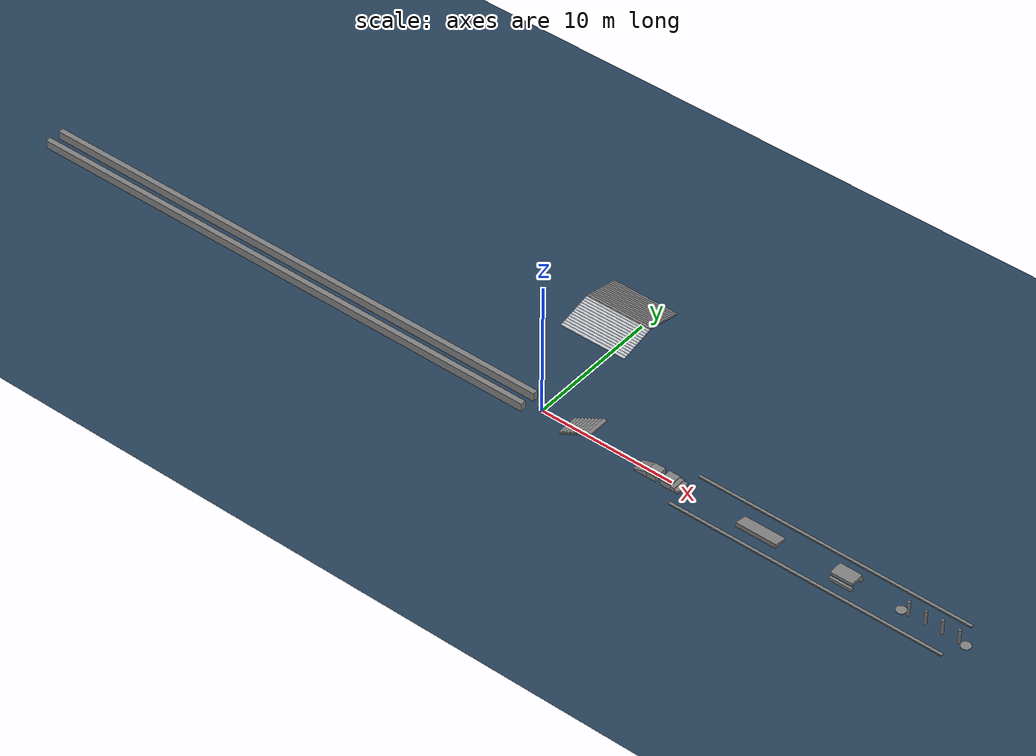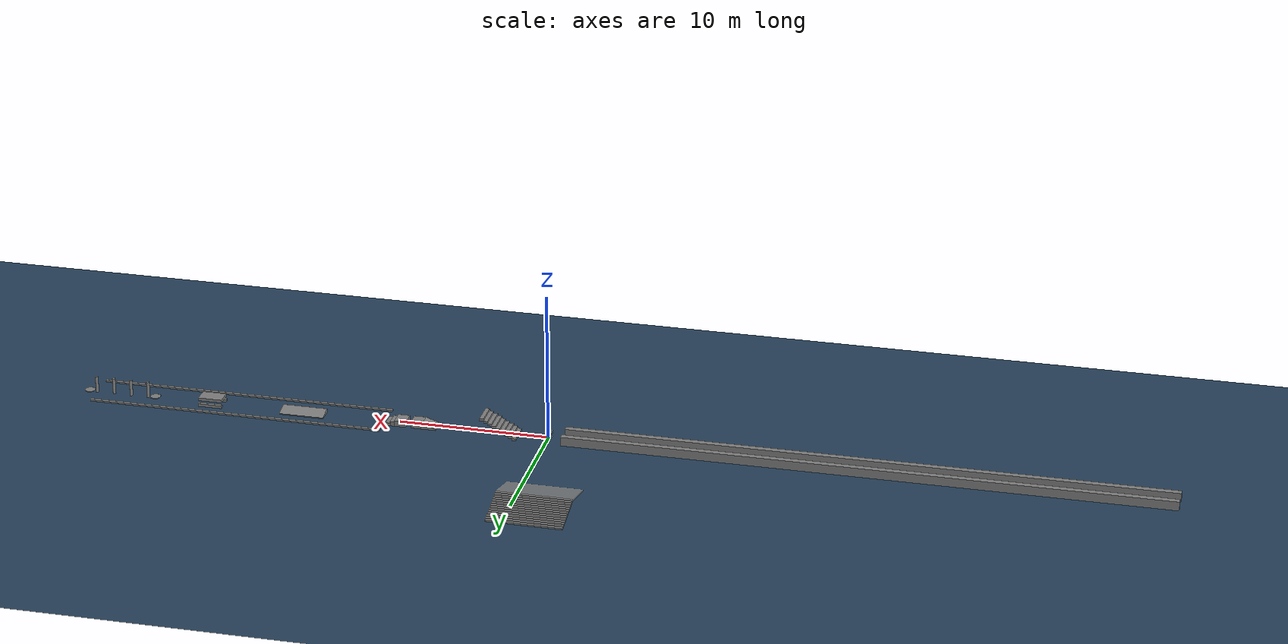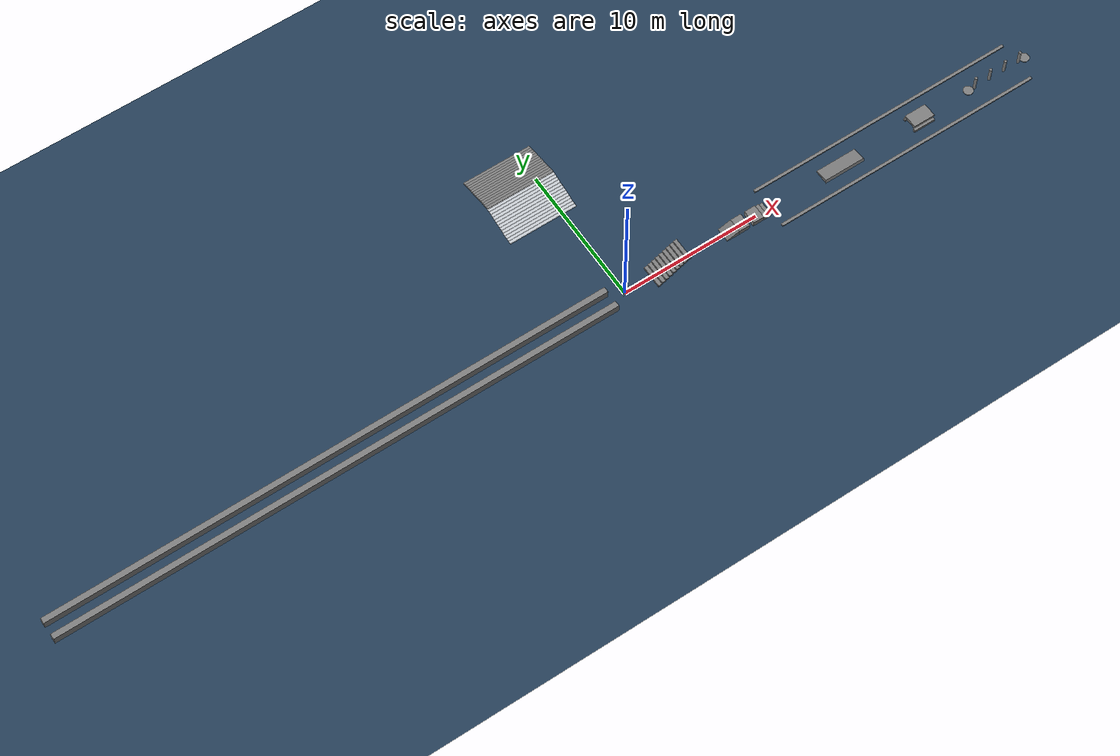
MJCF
<mujoco model="TOE_dog4.5 scene">
  <include file="dog.xml"/>

  <statistic center="0 0 0.1" extent="0.8"/>

  <visual>
    <headlight diffuse="0.6 0.6 0.6" ambient="0.3 0.3 0.3" specular="0 0 0"/>
    <rgba haze="0.15 0.25 0.35 1"/>
    <global azimuth="-130" elevation="-20"/>
  </visual>

  <asset>
    <texture type="skybox" builtin="gradient" rgb1="0.3 0.5 0.7" rgb2="0 0 0" width="512" height="3072"/>
    <texture type="2d" name="groundplane" builtin="checker" mark="edge" rgb1="0.2 0.3 0.4" rgb2="0.1 0.2 0.3"
      markrgb="0.8 0.8 0.8" width="300" height="300"/>
    <material name="groundplane" texture="groundplane" texuniform="true" texrepeat="5 5" reflectance="0.2"/>

  </asset>

  <worldbody>
    <light pos="0 0 1.5" dir="0 0 -1" directional="true"/>
    <geom name="floor" size="0 0 0.05" type="plane" material="groundplane" friction="1 0.1 0.01"/>
    <!-- 场地 -->
    <geom pos="-21 0.6 0.04" type="box"  size="20 0.2 0.5" quat="1.0 0 0 0"/>
    <geom pos="-21 -0.6 0.04" type="box"  size="20 0.2 0.5" quat="1.0 0 0 0"/>
    <geom pos="21 1.5 0.04" type="box"  size="10 0.1 0.05" quat="1.0 0 0 0"/>
    <geom pos="21 -1.5 0.04" type="box"  size="10 0.1 0.05" quat="1.0 0 0 0"/>
    <!-- 竖杆 -->
    <geom pos="27 0 0.02" type="cylinder"  size="0.35 0.02" quat="1.0 0 0 0"/>
    <geom pos="27.5 0 0.02" type="cylinder"  size="0.1 1." quat="1.0 0 0 0"/>
    <geom pos="28.7 0 0.02" type="cylinder"  size="0.1 1." quat="1.0 0 0 0"/>
    <geom pos="29.9 0 0.02" type="cylinder"  size="0.1 1." quat="1.0 0 0 0"/>
    <geom pos="31.1 0 0.02" type="cylinder"  size="0.1 1." quat="1.0 0 0 0"/>
    <geom pos="31.6 0 0.02" type="cylinder"  size="0.35 0.02" quat="1.0 0 0 0"/>
    <!-- 匍匐架 -->
    <geom pos="23 0.5 0.02" type="box"  size="0.8 0.1 0.1" quat="1.0 0 0 0"/>
    <geom pos="23 0 0.4" type="box"  size="0.8 0.5 0.1" quat="1.0 0 0 0"/>
    <geom pos="23 -0.5 0.02" type="box"  size="0.8 0.1 0.1" quat="1.0 0 0 0"/>
    <!-- 高墙 -->
    <!-- 断桥 -->
    <geom pos="8. 0 -0.025" type="box"  size="0.5 0.5 0.2" quat="0.9848 0 -0.1604 0"  friction="1 0.1 0.01"/>
    <geom pos="8.8 0 0.02" type="box"  size="0.4 0.5 0.3" quat="1.0 0 0 0"  friction="1 0.1 0.01"/>
    <geom pos="9.9 0 0.02" type="box"  size="0.4 0.5 0.3" quat="1.0 0 0 0"  friction="1 0.1 0.01"/>
    <geom pos="10.45 0 0.02" type="box"  size="0.15 0.5 0.2" quat="1.0 0 0 0"  friction="1 0.1 0.01"/>
    <geom pos="10.75 0 0.02" type="box"  size="0.15 0.5 0.1" quat="1.0 0 0 0"  friction="1 0.1 0.01"/>
    <!-- 斜坡 -->
    <geom pos="16.7 0.01 -0.07" type="box"  size="1.5 0.5 0.17" quat="0.9945 -0.1045 0 0"/>

    <geom pos="-1.5 7 0.05" type="box" size="0.1 2.5 0.05" quat="0.707 0 0 0.707" rgba="1 1 1 0.8" />
    <geom pos="-1.5 7.2 0.1" type="box" size="0.1 2.5 0.05" quat="0.707 0 0 0.707" rgba="1 1 1 0.8"/>
    <geom pos="-1.5 7.4 0.15" type="box" size="0.1 2.5 0.05" quat="0.707 0 0 0.707" rgba="1 1 1 0.8"/>
    <geom pos="-1.5 7.6 0.2" type="box" size="0.1 2.5 0.05" quat="0.707 0 0 0.707" rgba="1 1 1 0.8"/>
    <geom pos="-1.5 7.8 0.25" type="box" size="0.1 2.5 0.05" quat="0.707 0 0 0.707" rgba="1 1 1 0.8"/>
    <geom pos="-1.5 8.0 0.3" type="box" size="0.1 2.5 0.05" quat="0.707 0 0 0.707" rgba="1 1 1 0.8"/>
    <geom pos="-1.5 8.2 0.35" type="box" size="0.1 2.5 0.05" quat="0.707 0 0 0.707" rgba="1 1 1 0.8"/>
    <geom pos="-1.5 8.4 0.4" type="box" size="0.1 2.5 0.05" quat="0.707 0 0 0.707" rgba="1 1 1 0.8"/>
    <geom pos="-1.5 8.6 0.45" type="box" size="0.1 2.5 0.05" quat="0.707 0 0 0.707" rgba="1 1 1 0.8"/>
    <geom pos="-1.5 8.8 0.5" type="box" size="0.1 2.5 0.05" quat="0.707 0 0 0.707" rgba="1 1 1 0.8"/>
    <geom pos="-1.5 9.0 0.55" type="box" size="0.1 2.5 0.05" quat="0.707 0 0 0.707" rgba="1 1 1 0.8"/>
    <geom pos="-1.5 9.2 0.6" type="box" size="0.1 2.5 0.05" quat="0.707 0 0 0.707" rgba="1 1 1 0.8"/>
    <geom pos="-1.5 9.4 0.65" type="box" size="0.1 2.5 0.05" quat="0.707 0 0 0.707" rgba="1 1 1 0.8"/>
    <geom pos="-1.5 9.6 0.7" type="box" size="0.1 2.5 0.05" quat="0.707 0 0 0.707" rgba="1 1 1 0.8"/>

    <geom pos="-1.5 9.6 0.7" type="box" size="0.1 2.5 0.05" quat="0.707 0 0 0.707" />
    <geom pos="-1.5 9.8 0.65" type="box" size="0.1 2.5 0.05" quat="0.707 0 0 0.707" />
    <geom pos="-1.5 10.0 0.6" type="box" size="0.1 2.5 0.05" quat="0.707 0 0 0.707" />
    <geom pos="-1.5 10.2 0.55" type="box" size="0.1 2.5 0.05" quat="0.707 0 0 0.707" />
    <geom pos="-1.5 10.4 0.5" type="box" size="0.1 2.5 0.05" quat="0.707 0 0 0.707" />
    <geom pos="-1.5 10.6 0.45" type="box" size="0.1 2.5 0.05" quat="0.707 0 0 0.707" />
    <geom pos="-1.5 10.8 0.4" type="box" size="0.1 2.5 0.05" quat="0.707 0 0 0.707" />
    <geom pos="-1.5 11.0 0.35" type="box" size="0.1 2.5 0.05" quat="0.707 0 0 0.707" />
    <geom pos="-1.5 11.2 0.3" type="box" size="0.1 2.5 0.05" quat="0.707 0 0 0.707" />
    <geom pos="-1.5 11.4 0.25" type="box" size="0.1 2.5 0.05" quat="0.707 0 0 0.707" />
    <geom pos="-1.5 11.6 0.2" type="box" size="0.1 2.5 0.05" quat="0.707 0 0 0.707" />
    <geom pos="-1.5 11.8 0.15" type="box" size="0.1 2.5 0.05" quat="0.707 0 0 0.707" />
    <geom pos="-1.5 12.0 0.1" type="box" size="0.1 2.5 0.05" quat="0.707 0 0 0.707" />
    <geom pos="-1.5 12.2 0.05" type="box" size="0.1 2.5 0.05" quat="0.707 0 0 0.707" />
   <geom pos="2.135 0 0." type="box" size="0.135 0.8 0.075" quat="1 0 0 0." />
   <geom pos="2.405 0 0.15" type="box" size="0.135 0.8 0.075" quat="1 0 0 0" />
   <geom pos="2.675 0 0.30" type="box" size="0.135 0.8 0.075" quat="1 0 0 0" />
   <geom pos="2.945 0 0.45" type="box" size="0.135 0.8 0.075" quat="1 0 0 0" />
   <geom pos="3.215 0 0.60" type="box" size="0.135 0.8 0.075" quat="1 0 0 0" />
   <geom pos="3.485 0 0.75" type="box" size="0.135 0.8 0.075" quat="1 0 0 0" />
   <geom pos="3.755 0 0.90" type="box" size="0.135 0.8 0.075" quat="1 0 0 0" />
   <geom pos="4.025 0 1.05" type="box" size="0.135 0.8 0.075" quat="1 0 0 0" />
   <geom pos="4.295 0 1.20" type="box" size="0.135 0.8 0.075" quat="1 0 0 0" />

    </worldbody>
</mujoco>

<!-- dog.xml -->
<mujoco model="TOE_dog4.5">
  <compiler angle="radian" meshdir="../stl" autolimits="true" />

  <option cone="elliptic" impratio="100" />

  <default>
    <default class="dog">
      <geom friction="0.4" margin="0.001" condim="1"/>
      <joint axis="0 1 0" damping="0.1" armature="0.01" frictionloss="0.2"/>
      <motor ctrlrange="-20 20"/>
      <default class="abduction">
        <joint axis="1 0 0" range="-1 1"/>
      </default>
      <default class="hip">
        <joint range="-1.5 2.5"/>
      </default>
      <default class="knee">
        <joint range="-2.7 -0.8"/>
        <motor ctrlrange="-30 30"/>
      </default>
      <default class="visual">
        <geom type="mesh" contype="0" conaffinity="0" group="1"/>
      </default>
      <default class="collision">
        <geom group="3" contype="1" conaffinity="0"/>
        <default class="foot">
          <geom size="0.022" pos="-0.00129629 0 -0.21118" priority="1" condim="6" friction="0.9 0.02 0.01"/>
        </default>
      </default>
    </default>
  </default>

  <asset>
    <mesh name="base_link" file="base_link.STL"/>
    <mesh name="L_hip" file="L_hip.STL"/>
    <mesh name="L_thigh" file="L_thigh.STL"/>
    <mesh name="L_calf" file="L_calf.STL"/>
    <mesh name="foot" file="foot.STL"/>
    <mesh name="R_hip" file="R_hip.STL"/>
    <mesh name="R_thigh" file="R_thigh.STL"/>
    <mesh name="R_calf" file="R_calf.STL"/>
  </asset>

  <worldbody>
    <body name="base_link" pos="0 0 0.45" childclass="dog">
    <freejoint name="root"/>
    <inertial pos="0.00295211474088308 -0.00192758854859915 -0.0102792040045774" quat="-0.000543471 0.713435 -0.00173769 0.700719"
        mass="5.835083" diaginertia="0.068111 0.056604 0.025133" />
    <geom pos="-0.19 0.1154 -0.09" quat="0.707388 0 0 -0.706825" type="mesh" density="0" rgba="0.752941 0.752941 0.752941 1" mesh="base_link" contype="0" conaffinity="0" group="1"/>

    <geom size="0.135 0.115 0.06" type="box" rgba="1 1 1 1" class="collision"/>

    <site name='imu' size='0.01' pos='0.0 0 0.0'/>

    <body name="FL_hip" pos="0.2 0.05655 0">
      <inertial pos="-0.0070649 0.00658511 0.000124398" quat="0.495949 0.477547 0.517443 0.508169" mass="0.905192" diaginertia="0.00122102 0.00104387 0.000894103"/>
      <joint name="FL_hip_joint" pos="0 0 0" axis="1 0 0" range="-1 1" actuatorfrcrange="-20 20"/>
      <geom type="mesh" density="0" rgba="0.752941 0.752941 0.752941 1" mesh="L_hip" class="visual"/>
      <geom size="0.047 0.045" pos="0 0.05 0" quat="0.707107 0.707107 0 0" type="capsule" rgba="0.752941 0.752941 0.752941 1" class="collision"/>
      <body name="FL_thigh" pos="0 0.09375 0">
        <inertial pos="-0.00135206 -0.0159552 -0.030433" quat="0.699015 0.0668645 -0.0433449 0.710653" mass="1.1875" diaginertia="0.00485748 0.0046312 0.00105732"/>
        <joint name="FL_thigh_joint" pos="0 0 0" axis="0 1 0" range="-1.5 2.5" actuatorfrcrange="-20 20"/>
        <geom type="mesh" density="0" rgba="0.752941 0.752941 0.752941 1" mesh="L_thigh" class="visual"/>
        <geom size="0.055 0.01225 0.017" pos="0 0 -0.1065" quat="0.707107 0 0.707107 0" type="box" rgba="0.752941 0.752941 0.752941 1" class="collision"/>
        <body name="FL_calf" pos="0 0 -0.2">
          <inertial pos="0.006517 -0.000033 -0.106783" quat="1 0 0 0" mass="0.228394" diaginertia="0.00162529 0.00164186 0.00003857"/>
          <joint name="FL_calf_joint" pos="0 0 0" axis="0 1 0" range="-2.7 -0.8" actuatorfrcrange="-30 30"/>
          <geom type="mesh" density="0" rgba="0.752941 0.752941 0.752941 1" mesh="L_calf" class="visual"/>
          <geom size="0.012 0.06" pos="0.008 0 -0.05" quat="0.994493 0 -0.104807 0" type="capsule" rgba="0.752941 0.752941 0.752941 1" class="collision"/>
          <geom size="0.011 0.0325" pos="0.0198362 0 -0.138388" quat="0.999688 0 0.0249974 0" type="capsule" class="collision"/>
          <geom size="0.0155 0.015" pos="0.0134257 0 -0.182499" quat="0.965093 0 0.261909 0" type="capsule" class="collision"/>
          <geom pos="0.00070371 0 -0.21118" quat="1 0 0 0" type="mesh" density="0" rgba="1 1 1 1" mesh="foot" class="visual"/>
          <geom size="0.022" pos="-0.00129629 0 -0.21118" rgba="1 1 1 1" class="foot"/>
        </body>
      </body>
    </body>

    <body name="FR_hip" pos="0.2 -0.05655 0">
      <inertial pos="-0.0070649 -0.00658511 -0.000124398" quat="0.517443 0.508169 0.495949 0.477547" mass="0.905192" diaginertia="0.00122102 0.00104387 0.000894103"/>
      <joint name="FR_hip_joint" pos="0 0 0" axis="1 0 0" range="-1 1" actuatorfrcrange="-20 20"/>
      <geom quat="2.14617e-09 4.63268e-05 4.63268e-05 -1" type="mesh" density="0" rgba="0.752941 0.752941 0.752941 1" mesh="R_hip" class="visual"/>
      <geom size="0.047 0.045" pos="0 -0.05 0" quat="0.707107 0.707107 0 0" type="capsule" rgba="0.752941 0.752941 0.752941 1" class="collision"/>
      <body name="FR_thigh" pos="0 -0.09375 0">
        <inertial pos="-0.00109949 0.0159537 -0.0304843" quat="0.710653 -0.0433449 0.0668645 0.699015" mass="1.1875" diaginertia="0.00485748 0.0046312 0.00105732"/>
        <joint name="FR_thigh_joint" pos="0 0 0" axis="0 1 0" range="-1.5 2.5" actuatorfrcrange="-20 20"/>
        <geom type="mesh" density="0" rgba="0.752941 0.752941 0.752941 1" mesh="R_thigh" class="visual"/>
        <geom size="0.055 0.01225 0.017" pos="0 0 -0.1065" quat="0.707107 0 0.707107 0" type="box" rgba="0.752941 0.752941 0.752941 1" class="collision"/>
        <body name="FR_calf" pos="0 0 -0.2">
          <inertial pos="0.006517 -0.000033 -0.106783" quat="1 0 0 0" mass="0.228394" diaginertia="0.00162529 0.00164186 0.00003857"/>
          <joint name="FR_calf_joint" pos="0 0 0" axis="0 1 0" range="-2.7 -0.8" actuatorfrcrange="-30 30"/>
          <geom type="mesh" density="0" rgba="0.752941 0.752941 0.752941 1" mesh="R_calf" class="visual"/>
          <geom size="0.012 0.06" pos="0.008 0 -0.05" quat="0.994493 0 -0.104807 0" type="capsule" rgba="0.752941 0.752941 0.752941 1" class="collision"/>
          <geom size="0.011 0.0325" pos="0.020336 0 -0.1384" quat="0.999688 0 0.0249974 0" type="capsule" class="collision"/>
          <geom size="0.0155 0.015" pos="0.0161382 0 -0.182777" quat="0.971338 0 0.237703 0" type="capsule" class="collision"/>
          <geom pos="0.00070371 0 -0.21118" quat="1 0 0 0" type="mesh" density="0" rgba="1 1 1 1" mesh="foot" class="visual"/>
          <geom size="0.022" pos="-0.00129629 0 -0.21118" rgba="1 1 1 1" class="foot"/>
        </body>
      </body>
    </body>

    <body name="RL_hip" pos="-0.2 0.05655 0">
      <inertial pos="0.0070649 0.00658511 -0.000124398" quat="0.508169 0.517443 0.477547 0.495949" mass="0.905192" diaginertia="0.00122102 0.00104387 0.000894103"/>
      <joint name="RL_hip_joint" pos="0 0 0" axis="1 0 0" range="-1 1" actuatorfrcrange="-20 20"/>
      <geom quat="4.63268e-05 0 1 0" type="mesh" density="0" rgba="0.752941 0.752941 0.752941 1" mesh="L_hip" class="visual"/>
      <geom size="0.047 0.045" pos="0 0.05 0" quat="0.707107 0.707107 0 0" type="capsule" rgba="0.752941 0.752941 0.752941 1" class="collision"/>
      <body name="RL_thigh" pos="0 0.09375 0">
        <inertial pos="-0.00135206 -0.0159552 -0.030433" quat="0.699015 0.0668645 -0.0433449 0.710653" mass="1.1875" diaginertia="0.00485748 0.0046312 0.00105732"/>
        <joint name="RL_thigh_joint" pos="0 0 0" axis="0 1 0" range="-1.5 2.5" actuatorfrcrange="-20 20"/>
        <geom type="mesh" density="0" rgba="0.752941 0.752941 0.752941 1" mesh="L_thigh" class="visual"/>
        <geom size="0.055 0.01225 0.017" pos="0 0 -0.1065" quat="0.707107 0 0.707107 0" type="box" rgba="0.752941 0.752941 0.752941 1" class="collision"/>
        <body name="RL_calf" pos="0 0 -0.2">
          <inertial pos="0.006517 -0.000033 -0.106783" quat="1 0 0 0" mass="0.228394" diaginertia="0.00162529 0.00164186 0.00003857"/>
          <joint name="RL_calf_joint" pos="0 0 0" axis="0 1 0" range="-2.7 -0.8" actuatorfrcrange="-30 30"/>
          <geom type="mesh" density="0" rgba="0.752941 0.752941 0.752941 1" mesh="L_calf" class="visual"/>
          <geom size="0.012 0.06" pos="0.008 0 -0.05" quat="0.994493 0 -0.104807 0" type="capsule" rgba="0.752941 0.752941 0.752941 1" class="collision"/>
          <geom size="0.011 0.0325" pos="0.020336 0 -0.1384" quat="0.999688 0 0.0249974 0" type="capsule" class="collision"/>
          <geom size="0.0155 0.015" pos="0.0161382 0 -0.182777" quat="0.971338 0 0.237703 0" type="capsule" class="collision"/>
          <geom pos="0.00070371 0 -0.21118" quat="1 0 0 0" type="mesh" density="0" rgba="1 1 1 1" mesh="foot" class="visual"/>
          <geom size="0.022" pos="-0.00129629 0 -0.21118" rgba="1 1 1 1" class="foot"/>
        </body>
      </body>
    </body>

    <body name="RR_hip" pos="-0.2 -0.05655 0">
      <inertial pos="0.0070649 -0.00658511 0.000124398" quat="0.477547 0.495949 0.508169 0.517443" mass="0.905192" diaginertia="0.00122102 0.00104387 0.000894103"/>
      <joint name="RR_hip_joint" pos="0 0 0" axis="1 0 0" range="-1 1" actuatorfrcrange="-20 20"/>
      <geom quat="4.63268e-05 1 0 0" type="mesh" density="0" rgba="0.752941 0.752941 0.752941 1" mesh="R_hip" class="visual"/>
      <geom size="0.047 0.045" pos="0 -0.05 0" quat="0.707107 0.707107 0 0" type="capsule" rgba="0.752941 0.752941 0.752941 1" class="collision"/>
      <body name="RR_thigh" pos="0 -0.09375 0">
        <inertial pos="-0.00109949 0.0159537 -0.0304843" quat="0.710653 -0.0433449 0.0668645 0.699015" mass="1.1875" diaginertia="0.00485748 0.0046312 0.00105732"/>
        <joint name="RR_thigh_joint" pos="0 0 0" axis="0 1 0" range="-1.5 2.5" actuatorfrcrange="-20 20"/>
        <geom type="mesh" density="0" rgba="0.752941 0.752941 0.752941 1" mesh="R_thigh" class="visual"/>
        <geom size="0.055 0.01225 0.017" pos="0 0 -0.1065" quat="0.707107 0 0.707107 0" type="box" rgba="0.752941 0.752941 0.752941 1" class="collision"/>
        <body name="RR_calf" pos="0 0 -0.2">
          <inertial pos="0.006517 -0.000033 -0.106783" quat="1 0 0 0" mass="0.228394" diaginertia="0.00162529 0.00164186 0.00003857"/>
          <joint name="RR_calf_joint" pos="0 0 0" axis="0 1 0" range="-2.7 -0.8" actuatorfrcrange="-30 30"/>
          <geom type="mesh" density="0" rgba="0.752941 0.752941 0.752941 1" mesh="R_calf" class="visual"/>
          <geom size="0.012 0.06" pos="0.008 0 -0.05" quat="0.994493 0 -0.104807 0" type="capsule" rgba="0.752941 0.752941 0.752941 1" class="collision"/>
          <geom size="0.011 0.0325" pos="0.020336 0 -0.1384" quat="0.999688 0 0.0249974 0" type="capsule" class="collision"/>
          <geom size="0.0155 0.015" pos="0.0161382 0 -0.182777" quat="0.971338 0 0.237703 0" type="capsule" class="collision"/>
          <geom pos="0.000339 0 -0.21078" quat="1 0 0 0" type="mesh" density="0" rgba="1 1 1 1" mesh="foot" class="visual"/>
          <geom size="0.022" pos="0.000339 0 -0.21078" rgba="1 1 1 1" class="foot"/>
        </body>
      </body>
    </body>

    </body>
  </worldbody>

  <actuator>
    <motor name="FL_hip_joint" joint="FL_hip_joint" gear="1" ctrllimited="true" ctrlrange="-20 20"/>
    <motor name="FL_thigh_joint" joint="FL_thigh_joint" gear="1" ctrllimited="true" ctrlrange="-20 20"/>
    <motor name="FL_calf_joint" joint="FL_calf_joint" gear="1" ctrllimited="true" ctrlrange="-30 30"/>

    <motor name="FR_hip_joint" joint="FR_hip_joint" gear="1" ctrllimited="true" ctrlrange="-20 20"/>
    <motor name="FR_thigh_joint" joint="FR_thigh_joint" gear="1" ctrllimited="true" ctrlrange="-20 20"/>
    <motor name="FR_calf_joint" joint="FR_calf_joint" gear="1" ctrllimited="true" ctrlrange="-30 30"/>

    <motor name="RL_hip_joint" joint="RL_hip_joint" gear="1" ctrllimited="true" ctrlrange="-20 20"/>
    <motor name="RL_thigh_joint" joint="RL_thigh_joint" gear="1" ctrllimited="true" ctrlrange="-20 20"/>
    <motor name="RL_calf_joint" joint="RL_calf_joint" gear="1" ctrllimited="true" ctrlrange="-30 30"/>

    <motor name="RR_hip_joint" joint="RR_hip_joint" gear="1" ctrllimited="true" ctrlrange="-20 20"/>
    <motor name="RR_thigh_joint" joint="RR_thigh_joint" gear="1" ctrllimited="true" ctrlrange="-20 20"/>
    <motor name="RR_calf_joint" joint="RR_calf_joint" gear="1" ctrllimited="true" ctrlrange="-30 30"/>
  </actuator>

  <sensor>
    <jointpos name="FL_hip_pos" joint="FL_hip_joint" />
    <jointpos name="FL_thigh_pos" joint="FL_thigh_joint" />
    <jointpos name="FL_calf_pos" joint="FL_calf_joint" />
    <jointpos name="FR_hip_pos" joint="FR_hip_joint" />
    <jointpos name="FR_thigh_pos" joint="FR_thigh_joint" />
    <jointpos name="FR_calf_pos" joint="FR_calf_joint" />
    <jointpos name="RL_hip_pos" joint="RL_hip_joint" />
    <jointpos name="RL_thigh_pos" joint="RL_thigh_joint" />
    <jointpos name="RL_calf_pos" joint="RL_calf_joint" />
    <jointpos name="RR_hip_pos" joint="RR_hip_joint" />
    <jointpos name="RR_thigh_pos" joint="RR_thigh_joint" />
    <jointpos name="RR_calf_pos" joint="RR_calf_joint" />

    <jointvel name="FL_hip_vel" joint="FL_hip_joint" />
    <jointvel name="FL_thigh_vel" joint="FL_thigh_joint" />
    <jointvel name="FL_calf_vel" joint="FL_calf_joint" />
    <jointvel name="FR_hip_vel" joint="FR_hip_joint" />
    <jointvel name="FR_thigh_vel" joint="FR_thigh_joint" />
    <jointvel name="FR_calf_vel" joint="FR_calf_joint" />
    <jointvel name="RL_hip_vel" joint="RL_hip_joint" />
    <jointvel name="RL_thigh_vel" joint="RL_thigh_joint" />
    <jointvel name="RL_calf_vel" joint="RL_calf_joint" />
    <jointvel name="RR_hip_vel" joint="RR_hip_joint" />
    <jointvel name="RR_thigh_vel" joint="RR_thigh_joint" />
    <jointvel name="RR_calf_vel" joint="RR_calf_joint" />

    <jointactuatorfrc name="FL_hip_torque" joint="FL_hip_joint" noise="0.01" />
    <jointactuatorfrc name="FL_thigh_torque" joint="FL_thigh_joint" noise="0.01" />
    <jointactuatorfrc name="FL_calf_torque" joint="FL_calf_joint" noise="0.01" />
    <jointactuatorfrc name="FR_hip_torque" joint="FR_hip_joint" noise="0.01" />
    <jointactuatorfrc name="FR_thigh_torque" joint="FR_thigh_joint" noise="0.01" />
    <jointactuatorfrc name="FR_calf_torque" joint="FR_calf_joint" noise="0.01" />
    <jointactuatorfrc name="RL_hip_torque" joint="RL_hip_joint" noise="0.01" />
    <jointactuatorfrc name="RL_thigh_torque" joint="RL_thigh_joint" noise="0.01" />
    <jointactuatorfrc name="RL_calf_torque" joint="RL_calf_joint" noise="0.01" />
    <jointactuatorfrc name="RR_hip_torque" joint="RR_hip_joint" noise="0.01" />
    <jointactuatorfrc name="RR_thigh_torque" joint="RR_thigh_joint" noise="0.01" />
    <jointactuatorfrc name="RR_calf_torque" joint="RR_calf_joint" noise="0.01" />

    <framequat     name='orientation' objtype='site' noise='0.001' objname='imu'/>
    <framepos      name='position' objtype='site' noise='0.001' objname='imu'/>
    <framelinvel  name="base_lin_vel" objtype="site" objname="imu" />
    <gyro          name='angular-velocity'    site='imu' noise='0.005' cutoff='34.9'/>
    <velocimeter   name='linear-velocity'     site='imu' noise='0.001' cutoff='30'/>
    <accelerometer name='linear-acceleration' site='imu' noise='0.005' cutoff='157'/>
    <magnetometer  name='magnetometer'        site='imu'/>
  </sensor>

  <keyframe>
    <key name="home" qpos="0 0 0.27 1 0 0 0 0 0.9 -1.8 0 0.9 -1.8 0 0.9 -1.8 0 0.9 -1.8"
      ctrl="0 0.9 -1.8 0 0.9 -1.8 0 0.9 -1.8 0 0.9 -1.8" />
  </keyframe>
</mujoco>
